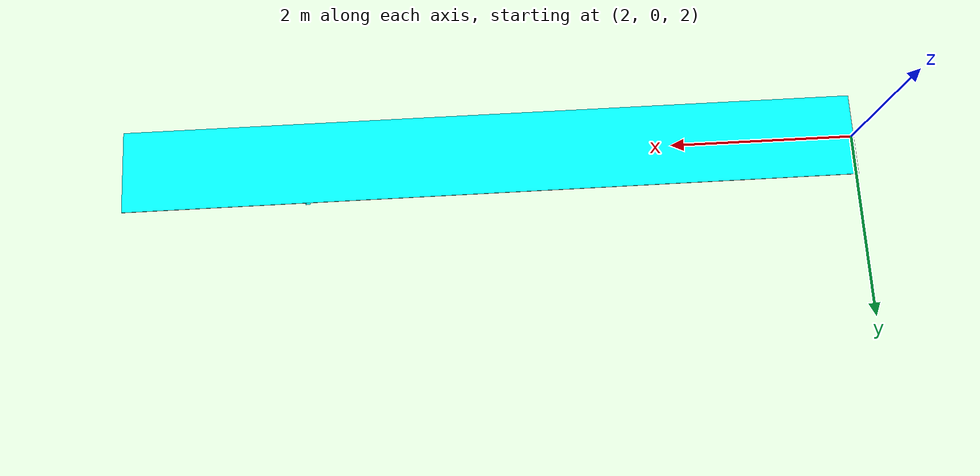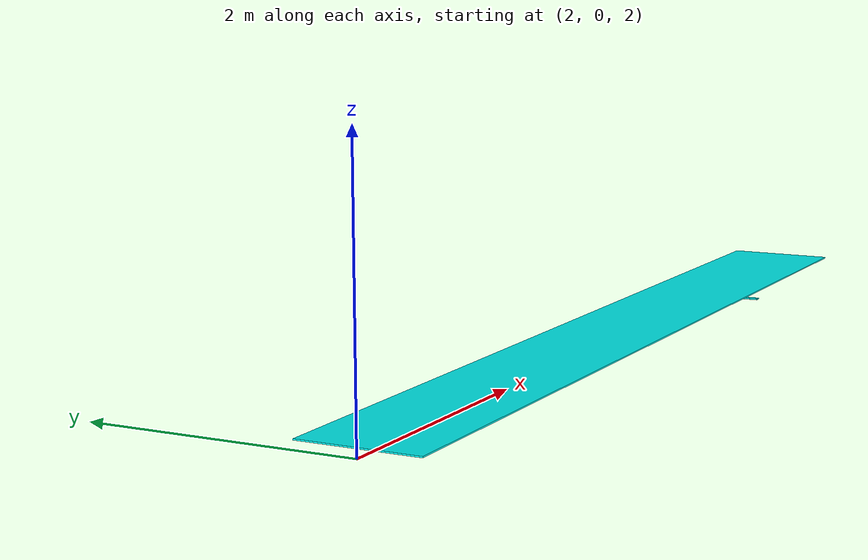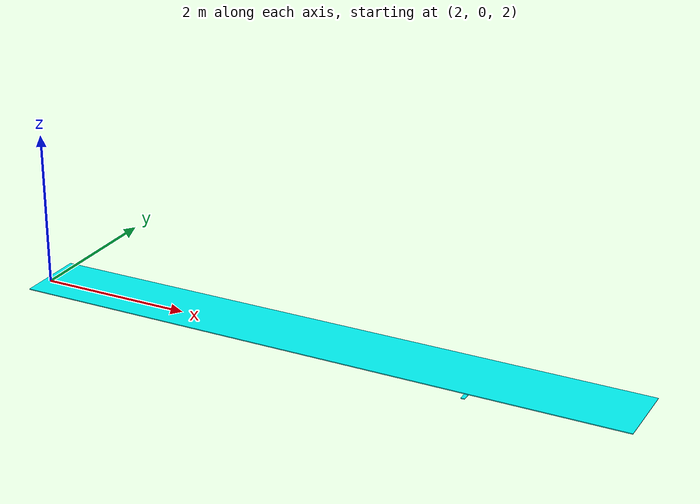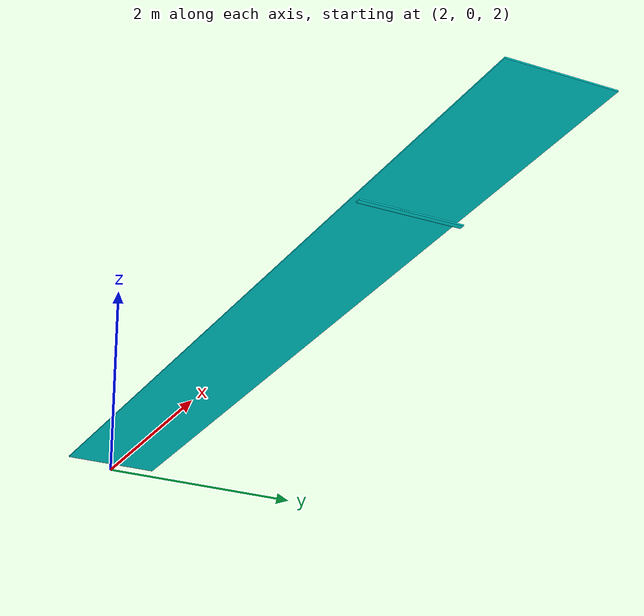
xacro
<?xml version="1.0"?>
<robot name="myfirst2" xmlns:xacro="http://www.ros.org/wiki/xacro">

<xacro:macro name="cuboid" params="name origin_xyz origin_rpy m l b h">
  <link name="${name}">

   <inertial>
     <origin rpy="${origin_rpy}" xyz="${origin_xyz}" />
     <mass value="${m}"/>
     <inertia ixx="${m*((b*b) + (h*h))/12}"  ixy="0"  ixz="0" iyy="${m*((l*l) + (h*h))/12}" iyz="0" izz="${m*((b*b) + (l*l))/12}" />
   </inertial>
   <visual>
     <origin rpy="${origin_rpy}" xyz="${origin_xyz}" />
     <geometry>
       <box size="${l} ${b} ${h}" />
     </geometry>
     <material name="Cyan">
       <color rgba="0 1.0 1.0 1.0"/>
     </material>
   </visual>
   <collision>
    <origin rpy="${origin_rpy}" xyz="${origin_xyz}" />
    <geometry>
       <box size="${l} ${b} ${h}" />
     </geometry>
     <surface>
            <friction>
              <ode>
                <mu>30</mu>
                <mu2>30</mu2>
                <kp value="1000" />
                <kd value="1000" />
              </ode>
            </friction>
          </surface>
   </collision>
  </link>

 <gazebo reference="${name}">
    <material>Gazebo/Road</material>
 </gazebo>
</xacro:macro>

  <xacro:macro name="boxjoint" params="name type axis_xyz origin_rpy origin_xyz parent child">
    <joint name="${name}" type="${type}">
      <parent link="${parent}" />
      <child link="${child}" />
      <axis xyz="${axis_xyz}" />
      <limit effort="1000.0" lower="-3.14" upper="3.14" velocity="0.5" />
      <origin rpy="${origin_rpy}" xyz="${origin_xyz}" />
    </joint>
  </xacro:macro>

<xacro:cuboid name="plate2" origin_xyz="6 0 2" origin_rpy="0 0 0" m="50000" l="8" b="0.9" h="0.01"/>
<xacro:cuboid name="height2" origin_xyz="8 0 2" origin_rpy="0 0 0" m="5000" l="0.05" b=".9" h="0.01"/>
<xacro:boxjoint name="joint2" type="fixed" axis_xyz="0 1 0" origin_rpy="0 0 0" origin_xyz="0 0 0.07" parent="height2" child="plate2"/>

</robot>
